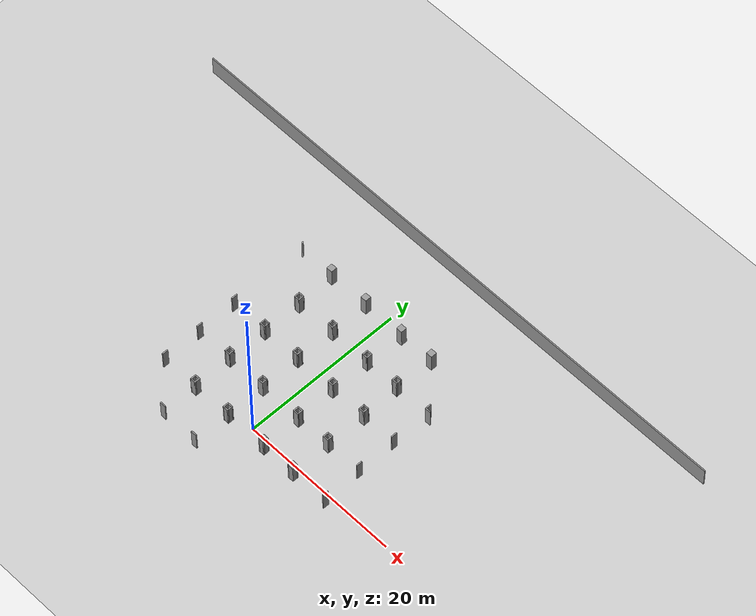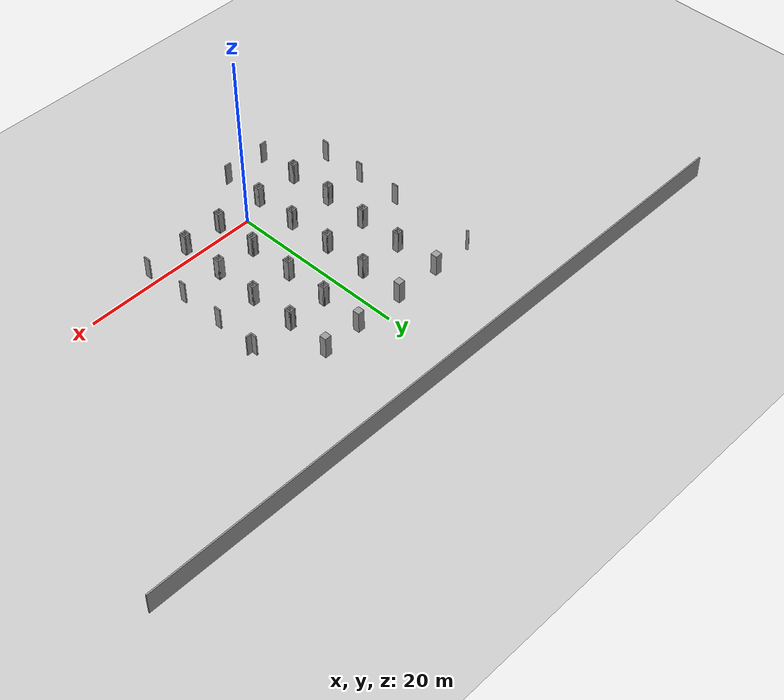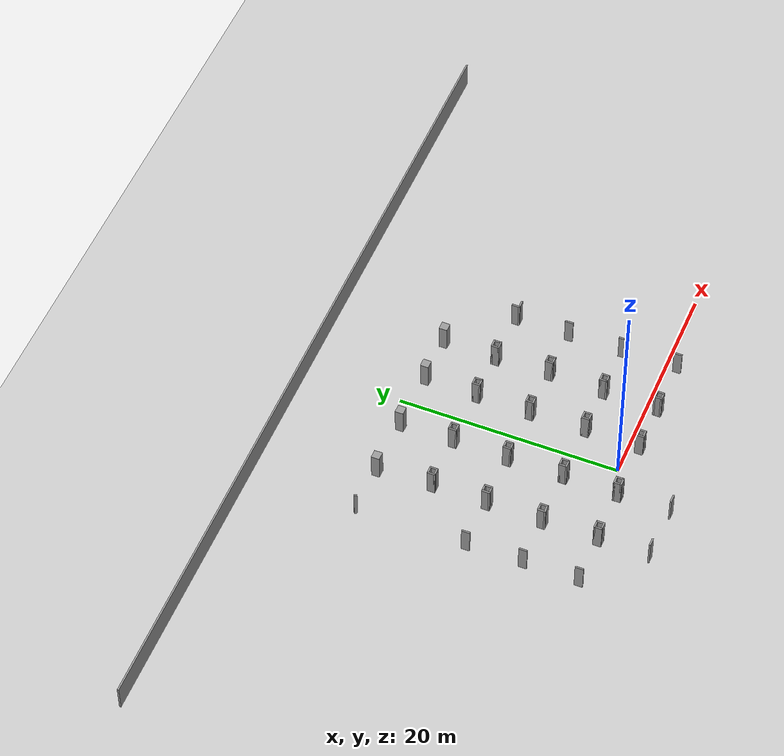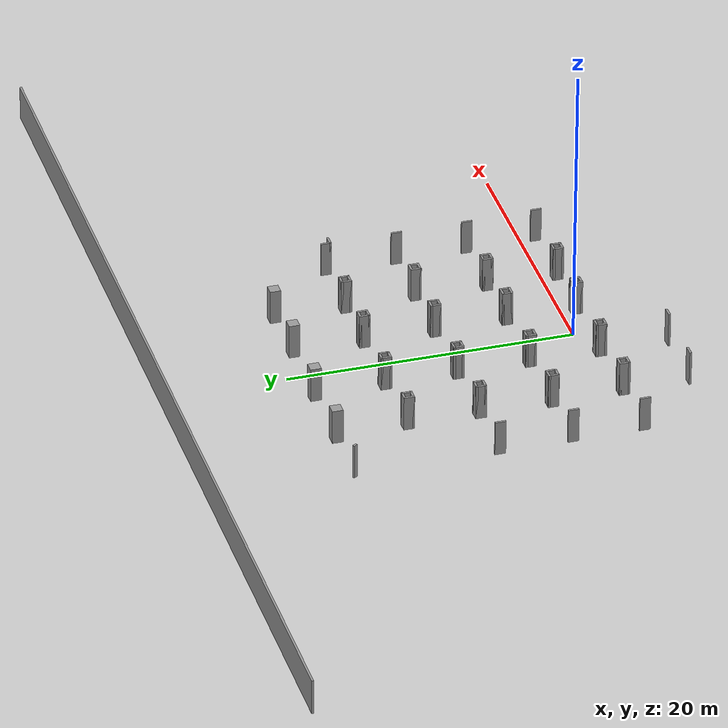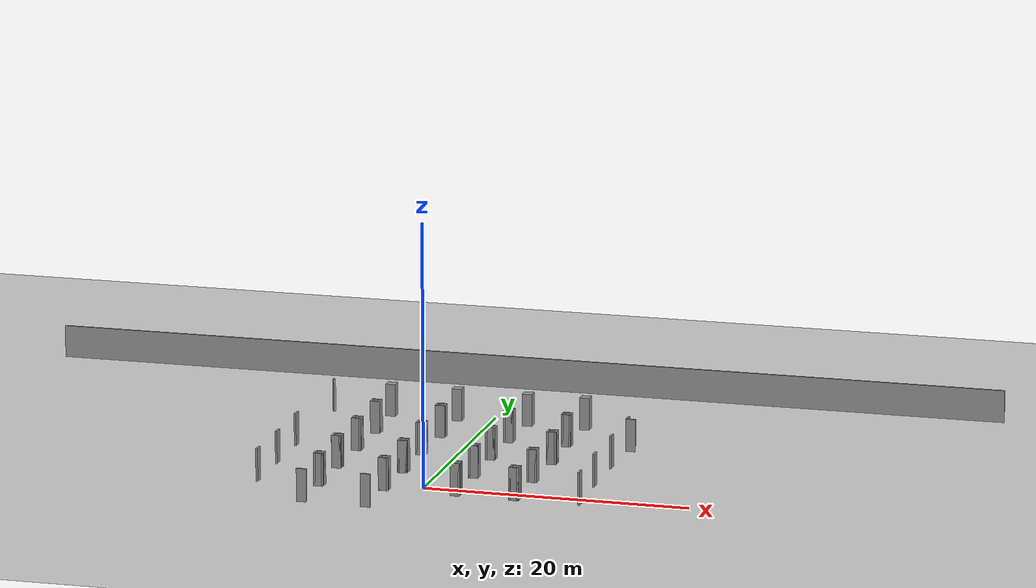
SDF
<sdf version="1.6">
 <world name="default">
  <model name="ground_plane">
   <static>1</static>
   <link name="link">
    <collision name="collision">
     <geometry><plane><normal>0 0 1</normal><size>100 100</size></plane></geometry>
     <surface>
      <contact><collide_bitmask>65535</collide_bitmask></contact>
      <friction><ode><mu>100</mu><mu2>50</mu2></ode></friction>
     </surface>
    </collision>
    <visual name="visual">
     <cast_shadows>0</cast_shadows>
     <geometry><plane><normal>0 0 1</normal><size>100 100</size></plane></geometry>
     <material>
      <script><uri>file://media/materials/scripts/gazebo.material</uri><name>Gazebo/Grey</name></script>
     </material>
    </visual>
   </link>
  </model>
  <model name="parking_area_big">
   <pose>0.030669 -0.012869 0 0 -0 0</pose>
   <link name="Wall_152">
    <collision name="Wall_152_Collision">
     <geometry><box><size>0.75 0.15 2.5</size></box></geometry>
     <pose>0 0 1.25 0 -0 0</pose>
    </collision>
    <visual name="Wall_152_Visual">
     <pose>0 0 1.25 0 -0 0</pose>
     <geometry><box><size>0.75 0.15 2.5</size></box></geometry>
     <material>
      <script><uri>file://media/materials/scripts/gazebo.material</uri><name>Gazebo/Grey</name></script>
      <ambient>1 1 1 1</ambient>
     </material>
     <meta><layer>0</layer></meta>
    </visual>
    <pose>2.71765 -0.688004 0 0 -0 0</pose>
   </link>
   <link name="Wall_153">
    <collision name="Wall_153_Collision">
     <geometry><box><size>0.75 0.15 2.5</size></box></geometry>
     <pose>0 0 1.25 0 -0 0</pose>
    </collision>
    <visual name="Wall_153_Visual">
     <pose>0 0 1.25 0 -0 0</pose>
     <geometry><box><size>0.75 0.15 2.5</size></box></geometry>
     <material>
      <script><uri>file://media/materials/scripts/gazebo.material</uri><name>Gazebo/Grey</name></script>
      <ambient>1 1 1 1</ambient>
     </material>
     <meta><layer>0</layer></meta>
    </visual>
    <pose>3.01764 -0.988004 0 0 -0 -1.5708</pose>
   </link>
   <link name="Wall_154">
    <collision name="Wall_154_Collision">
     <geometry><box><size>0.75 0.15 2.5</size></box></geometry>
     <pose>0 0 1.25 0 -0 0</pose>
    </collision>
    <visual name="Wall_154_Visual">
     <pose>0 0 1.25 0 -0 0</pose>
     <geometry><box><size>0.75 0.15 2.5</size></box></geometry>
     <material>
      <script><uri>file://media/materials/scripts/gazebo.material</uri><name>Gazebo/Grey</name></script>
      <ambient>1 1 1 1</ambient>
     </material>
     <meta><layer>0</layer></meta>
    </visual>
    <pose>2.71765 -1.288 0 0 -0 3.14159</pose>
   </link>
   <link name="Wall_155">
    <collision name="Wall_155_Collision">
     <geometry><box><size>0.75 0.15 2.5</size></box></geometry>
     <pose>0 0 1.25 0 -0 0</pose>
    </collision>
    <visual name="Wall_155_Visual">
     <pose>0 0 1.25 0 -0 0</pose>
     <geometry><box><size>0.75 0.15 2.5</size></box></geometry>
     <material>
      <script><uri>file://media/materials/scripts/gazebo.material</uri><name>Gazebo/Grey</name></script>
      <ambient>1 1 1 1</ambient>
     </material>
     <meta><layer>0</layer></meta>
    </visual>
    <pose>2.41764 -0.988004 0 0 -0 1.5708</pose>
   </link>
   <link name="Wall_163">
    <collision name="Wall_163_Collision">
     <geometry><box><size>0.75 0.15 2.5</size></box></geometry>
     <pose>0 0 1.25 0 -0 0</pose>
    </collision>
    <visual name="Wall_163_Visual">
     <pose>0 0 1.25 0 -0 0</pose>
     <geometry><box><size>0.75 0.15 2.5</size></box></geometry>
     <material>
      <script><uri>file://media/materials/scripts/gazebo.material</uri><name>Gazebo/Grey</name></script>
      <ambient>1 1 1 1</ambient>
     </material>
     <meta><layer>0</layer></meta>
    </visual>
    <pose>7.17964 -0.734004 0 0 -0 0</pose>
   </link>
   <link name="Wall_164">
    <collision name="Wall_164_Collision">
     <geometry><box><size>0.75 0.15 2.5</size></box></geometry>
     <pose>0 0 1.25 0 -0 0</pose>
    </collision>
    <visual name="Wall_164_Visual">
     <pose>0 0 1.25 0 -0 0</pose>
     <geometry><box><size>0.75 0.15 2.5</size></box></geometry>
     <material>
      <script><uri>file://media/materials/scripts/gazebo.material</uri><name>Gazebo/Grey</name></script>
      <ambient>1 1 1 1</ambient>
     </material>
     <meta><layer>0</layer></meta>
    </visual>
    <pose>7.47964 -1.034 0 0 -0 -1.5708</pose>
   </link>
   <link name="Wall_165">
    <collision name="Wall_165_Collision">
     <geometry><box><size>0.75 0.15 2.5</size></box></geometry>
     <pose>0 0 1.25 0 -0 0</pose>
    </collision>
    <visual name="Wall_165_Visual">
     <pose>0 0 1.25 0 -0 0</pose>
     <geometry><box><size>0.75 0.15 2.5</size></box></geometry>
     <material>
      <script><uri>file://media/materials/scripts/gazebo.material</uri><name>Gazebo/Grey</name></script>
      <ambient>1 1 1 1</ambient>
     </material>
     <meta><layer>0</layer></meta>
    </visual>
    <pose>7.17964 -1.334 0 0 -0 3.14159</pose>
   </link>
   <link name="Wall_166">
    <collision name="Wall_166_Collision">
     <geometry><box><size>0.75 0.15 2.5</size></box></geometry>
     <pose>0 0 1.25 0 -0 0</pose>
    </collision>
    <visual name="Wall_166_Visual">
     <pose>0 0 1.25 0 -0 0</pose>
     <geometry><box><size>0.75 0.15 2.5</size></box></geometry>
     <material>
      <script><uri>file://media/materials/scripts/gazebo.material</uri><name>Gazebo/Grey</name></script>
      <ambient>1 1 1 1</ambient>
     </material>
     <meta><layer>0</layer></meta>
    </visual>
    <pose>6.87965 -1.034 0 0 -0 1.5708</pose>
   </link>
   <link name="Wall_171">
    <collision name="Wall_171_Collision">
     <geometry><box><size>0.75 0.15 2.5</size></box></geometry>
     <pose>0 0 1.25 0 -0 0</pose>
    </collision>
    <visual name="Wall_171_Visual">
     <pose>0 0 1.25 0 -0 0</pose>
     <geometry><box><size>0.75 0.15 2.5</size></box></geometry>
     <material>
      <script><uri>file://media/materials/scripts/gazebo.material</uri><name>Gazebo/Grey</name></script>
      <ambient>1 1 1 1</ambient>
     </material>
     <meta><layer>0</layer></meta>
    </visual>
    <pose>12.0546 -1.034 0 0 -0 1.5708</pose>
   </link>
   <link name="Wall_203">
    <collision name="Wall_203_Collision">
     <geometry><box><size>0.75 0.15 2.5</size></box></geometry>
     <pose>0 0 1.25 0 -0 0</pose>
    </collision>
    <visual name="Wall_203_Visual">
     <pose>0 0 1.25 0 -0 0</pose>
     <geometry><box><size>0.75 0.15 2.5</size></box></geometry>
     <material>
      <script><uri>file://media/materials/scripts/gazebo.material</uri><name>Gazebo/Grey</name></script>
      <ambient>1 1 1 1</ambient>
     </material>
     <meta><layer>0</layer></meta>
    </visual>
    <pose>-2.71545 -0.677885 0 0 -0 0</pose>
   </link>
   <link name="Wall_204">
    <collision name="Wall_204_Collision">
     <geometry><box><size>0.75 0.15 2.5</size></box></geometry>
     <pose>0 0 1.25 0 -0 0</pose>
    </collision>
    <visual name="Wall_204_Visual">
     <pose>0 0 1.25 0 -0 0</pose>
     <geometry><box><size>0.75 0.15 2.5</size></box></geometry>
     <material>
      <script><uri>file://media/materials/scripts/gazebo.material</uri><name>Gazebo/Grey</name></script>
      <ambient>1 1 1 1</ambient>
     </material>
     <meta><layer>0</layer></meta>
    </visual>
    <pose>-2.41545 -0.977885 0 0 -0 -1.5708</pose>
   </link>
   <link name="Wall_205">
    <collision name="Wall_205_Collision">
     <geometry><box><size>0.75 0.15 2.5</size></box></geometry>
     <pose>0 0 1.25 0 -0 0</pose>
    </collision>
    <visual name="Wall_205_Visual">
     <pose>0 0 1.25 0 -0 0</pose>
     <geometry><box><size>0.75 0.15 2.5</size></box></geometry>
     <material>
      <script><uri>file://media/materials/scripts/gazebo.material</uri><name>Gazebo/Grey</name></script>
      <ambient>1 1 1 1</ambient>
     </material>
     <meta><layer>0</layer></meta>
    </visual>
    <pose>-2.71545 -1.27788 0 0 -0 3.14159</pose>
   </link>
   <link name="Wall_206">
    <collision name="Wall_206_Collision">
     <geometry><box><size>0.75 0.15 2.5</size></box></geometry>
     <pose>0 0 1.25 0 -0 0</pose>
    </collision>
    <visual name="Wall_206_Visual">
     <pose>0 0 1.25 0 -0 0</pose>
     <geometry><box><size>0.75 0.15 2.5</size></box></geometry>
     <material>
      <script><uri>file://media/materials/scripts/gazebo.material</uri><name>Gazebo/Grey</name></script>
      <ambient>1 1 1 1</ambient>
     </material>
     <meta><layer>0</layer></meta>
    </visual>
    <pose>-3.01545 -0.977885 0 0 -0 1.5708</pose>
   </link>
   <link name="Wall_208">
    <collision name="Wall_208_Collision">
     <geometry><box><size>0.75 0.15 2.5</size></box></geometry>
     <pose>0 0 1.25 0 -0 0</pose>
    </collision>
    <visual name="Wall_208_Visual">
     <pose>0 0 1.25 0 -0 0</pose>
     <geometry><box><size>0.75 0.15 2.5</size></box></geometry>
     <material>
      <script><uri>file://media/materials/scripts/gazebo.material</uri><name>Gazebo/Grey</name></script>
      <ambient>1 1 1 1</ambient>
     </material>
     <meta><layer>0</layer></meta>
    </visual>
    <pose>-2.77188 -5.7202 0 0 -0 0</pose>
   </link>
   <link name="Wall_213">
    <collision name="Wall_213_Collision">
     <geometry><box><size>0.75 0.15 2.5</size></box></geometry>
     <pose>0 0 1.25 0 -0 0</pose>
    </collision>
    <visual name="Wall_213_Visual">
     <pose>0 0 1.25 0 -0 0</pose>
     <geometry><box><size>0.75 0.15 2.5</size></box></geometry>
     <material>
      <script><uri>file://media/materials/scripts/gazebo.material</uri><name>Gazebo/Grey</name></script>
      <ambient>1 1 1 1</ambient>
     </material>
     <meta><layer>0</layer></meta>
    </visual>
    <pose>-2.71898 9.27695 0 0 -0 0</pose>
   </link>
   <link name="Wall_214">
    <collision name="Wall_214_Collision">
     <geometry><box><size>0.75 0.15 2.5</size></box></geometry>
     <pose>0 0 1.25 0 -0 0</pose>
    </collision>
    <visual name="Wall_214_Visual">
     <pose>0 0 1.25 0 -0 0</pose>
     <geometry><box><size>0.75 0.15 2.5</size></box></geometry>
     <material>
      <script><uri>file://media/materials/scripts/gazebo.material</uri><name>Gazebo/Grey</name></script>
      <ambient>1 1 1 1</ambient>
     </material>
     <meta><layer>0</layer></meta>
    </visual>
    <pose>-2.41898 8.97695 0 0 -0 -1.5708</pose>
   </link>
   <link name="Wall_215">
    <collision name="Wall_215_Collision">
     <geometry><box><size>0.75 0.15 2.5</size></box></geometry>
     <pose>0 0 1.25 0 -0 0</pose>
    </collision>
    <visual name="Wall_215_Visual">
     <pose>0 0 1.25 0 -0 0</pose>
     <geometry><box><size>0.75 0.15 2.5</size></box></geometry>
     <material>
      <script><uri>file://media/materials/scripts/gazebo.material</uri><name>Gazebo/Grey</name></script>
      <ambient>1 1 1 1</ambient>
     </material>
     <meta><layer>0</layer></meta>
    </visual>
    <pose>-2.71898 8.67695 0 0 -0 3.14159</pose>
   </link>
   <link name="Wall_216">
    <collision name="Wall_216_Collision">
     <geometry><box><size>0.75 0.15 2.5</size></box></geometry>
     <pose>0 0 1.25 0 -0 0</pose>
    </collision>
    <visual name="Wall_216_Visual">
     <pose>0 0 1.25 0 -0 0</pose>
     <geometry><box><size>0.75 0.15 2.5</size></box></geometry>
     <material>
      <script><uri>file://media/materials/scripts/gazebo.material</uri><name>Gazebo/Grey</name></script>
      <ambient>1 1 1 1</ambient>
     </material>
     <meta><layer>0</layer></meta>
    </visual>
    <pose>-3.01898 8.97695 0 0 -0 1.5708</pose>
   </link>
   <link name="Wall_218">
    <collision name="Wall_218_Collision">
     <geometry><box><size>0.75 0.15 2.5</size></box></geometry>
     <pose>0 0 1.25 0 -0 0</pose>
    </collision>
    <visual name="Wall_218_Visual">
     <pose>0 0 1.25 0 -0 0</pose>
     <geometry><box><size>0.75 0.15 2.5</size></box></geometry>
     <material>
      <script><uri>file://media/materials/scripts/gazebo.material</uri><name>Gazebo/Grey</name></script>
      <ambient>1 1 1 1</ambient>
     </material>
     <meta><layer>0</layer></meta>
    </visual>
    <pose>-2.66608 4.225 0 0 -0 0</pose>
   </link>
   <link name="Wall_219">
    <collision name="Wall_219_Collision">
     <geometry><box><size>0.75 0.15 2.5</size></box></geometry>
     <pose>0 0 1.25 0 -0 0</pose>
    </collision>
    <visual name="Wall_219_Visual">
     <pose>0 0 1.25 0 -0 0</pose>
     <geometry><box><size>0.75 0.15 2.5</size></box></geometry>
     <material>
      <script><uri>file://media/materials/scripts/gazebo.material</uri><name>Gazebo/Grey</name></script>
      <ambient>1 1 1 1</ambient>
     </material>
     <meta><layer>0</layer></meta>
    </visual>
    <pose>-2.36608 3.925 0 0 -0 -1.5708</pose>
   </link>
   <link name="Wall_220">
    <collision name="Wall_220_Collision">
     <geometry><box><size>0.75 0.15 2.5</size></box></geometry>
     <pose>0 0 1.25 0 -0 0</pose>
    </collision>
    <visual name="Wall_220_Visual">
     <pose>0 0 1.25 0 -0 0</pose>
     <geometry><box><size>0.75 0.15 2.5</size></box></geometry>
     <material>
      <script><uri>file://media/materials/scripts/gazebo.material</uri><name>Gazebo/Grey</name></script>
      <ambient>1 1 1 1</ambient>
     </material>
     <meta><layer>0</layer></meta>
    </visual>
    <pose>-2.66608 3.625 0 0 -0 3.14159</pose>
   </link>
   <link name="Wall_221">
    <collision name="Wall_221_Collision">
     <geometry><box><size>0.75 0.15 2.5</size></box></geometry>
     <pose>0 0 1.25 0 -0 0</pose>
    </collision>
    <visual name="Wall_221_Visual">
     <pose>0 0 1.25 0 -0 0</pose>
     <geometry><box><size>0.75 0.15 2.5</size></box></geometry>
     <material>
      <script><uri>file://media/materials/scripts/gazebo.material</uri><name>Gazebo/Grey</name></script>
      <ambient>1 1 1 1</ambient>
     </material>
     <meta><layer>0</layer></meta>
    </visual>
    <pose>-2.96608 3.925 0 0 -0 1.5708</pose>
   </link>
   <link name="Wall_223">
    <collision name="Wall_223_Collision">
     <geometry><box><size>0.75 0.15 2.5</size></box></geometry>
     <pose>0 0 1.25 0 -0 0</pose>
    </collision>
    <visual name="Wall_223_Visual">
     <pose>0 0 1.25 0 -0 0</pose>
     <geometry><box><size>0.75 0.15 2.5</size></box></geometry>
     <material>
      <script><uri>file://media/materials/scripts/gazebo.material</uri><name>Gazebo/Grey</name></script>
      <ambient>1 1 1 1</ambient>
     </material>
     <meta><layer>0</layer></meta>
    </visual>
    <pose>2.62392 9.27695 0 0 -0 0</pose>
   </link>
   <link name="Wall_224">
    <collision name="Wall_224_Collision">
     <geometry><box><size>0.75 0.15 2.5</size></box></geometry>
     <pose>0 0 1.25 0 -0 0</pose>
    </collision>
    <visual name="Wall_224_Visual">
     <pose>0 0 1.25 0 -0 0</pose>
     <geometry><box><size>0.75 0.15 2.5</size></box></geometry>
     <material>
      <script><uri>file://media/materials/scripts/gazebo.material</uri><name>Gazebo/Grey</name></script>
      <ambient>1 1 1 1</ambient>
     </material>
     <meta><layer>0</layer></meta>
    </visual>
    <pose>2.92392 8.97695 0 0 -0 -1.5708</pose>
   </link>
   <link name="Wall_225">
    <collision name="Wall_225_Collision">
     <geometry><box><size>0.75 0.15 2.5</size></box></geometry>
     <pose>0 0 1.25 0 -0 0</pose>
    </collision>
    <visual name="Wall_225_Visual">
     <pose>0 0 1.25 0 -0 0</pose>
     <geometry><box><size>0.75 0.15 2.5</size></box></geometry>
     <material>
      <script><uri>file://media/materials/scripts/gazebo.material</uri><name>Gazebo/Grey</name></script>
      <ambient>1 1 1 1</ambient>
     </material>
     <meta><layer>0</layer></meta>
    </visual>
    <pose>2.62392 8.67695 0 0 -0 3.14159</pose>
   </link>
   <link name="Wall_226">
    <collision name="Wall_226_Collision">
     <geometry><box><size>0.75 0.15 2.5</size></box></geometry>
     <pose>0 0 1.25 0 -0 0</pose>
    </collision>
    <visual name="Wall_226_Visual">
     <pose>0 0 1.25 0 -0 0</pose>
     <geometry><box><size>0.75 0.15 2.5</size></box></geometry>
     <material>
      <script><uri>file://media/materials/scripts/gazebo.material</uri><name>Gazebo/Grey</name></script>
      <ambient>1 1 1 1</ambient>
     </material>
     <meta><layer>0</layer></meta>
    </visual>
    <pose>2.32392 8.97695 0 0 -0 1.5708</pose>
   </link>
   <link name="Wall_228">
    <collision name="Wall_228_Collision">
     <geometry><box><size>0.75 0.15 2.5</size></box></geometry>
     <pose>0 0 1.25 0 -0 0</pose>
    </collision>
    <visual name="Wall_228_Visual">
     <pose>0 0 1.25 0 -0 0</pose>
     <geometry><box><size>0.75 0.15 2.5</size></box></geometry>
     <material>
      <script><uri>file://media/materials/scripts/gazebo.material</uri><name>Gazebo/Grey</name></script>
      <ambient>1 1 1 1</ambient>
     </material>
     <meta><layer>0</layer></meta>
    </visual>
    <pose>2.72972 4.225 0 0 -0 0</pose>
   </link>
   <link name="Wall_229">
    <collision name="Wall_229_Collision">
     <geometry><box><size>0.75 0.15 2.5</size></box></geometry>
     <pose>0 0 1.25 0 -0 0</pose>
    </collision>
    <visual name="Wall_229_Visual">
     <pose>0 0 1.25 0 -0 0</pose>
     <geometry><box><size>0.75 0.15 2.5</size></box></geometry>
     <material>
      <script><uri>file://media/materials/scripts/gazebo.material</uri><name>Gazebo/Grey</name></script>
      <ambient>1 1 1 1</ambient>
     </material>
     <meta><layer>0</layer></meta>
    </visual>
    <pose>3.02972 3.925 0 0 -0 -1.5708</pose>
   </link>
   <link name="Wall_230">
    <collision name="Wall_230_Collision">
     <geometry><box><size>0.75 0.15 2.5</size></box></geometry>
     <pose>0 0 1.25 0 -0 0</pose>
    </collision>
    <visual name="Wall_230_Visual">
     <pose>0 0 1.25 0 -0 0</pose>
     <geometry><box><size>0.75 0.15 2.5</size></box></geometry>
     <material>
      <script><uri>file://media/materials/scripts/gazebo.material</uri><name>Gazebo/Grey</name></script>
      <ambient>1 1 1 1</ambient>
     </material>
     <meta><layer>0</layer></meta>
    </visual>
    <pose>2.72972 3.625 0 0 -0 3.14159</pose>
   </link>
   <link name="Wall_231">
    <collision name="Wall_231_Collision">
     <geometry><box><size>0.75 0.15 2.5</size></box></geometry>
     <pose>0 0 1.25 0 -0 0</pose>
    </collision>
    <visual name="Wall_231_Visual">
     <pose>0 0 1.25 0 -0 0</pose>
     <geometry><box><size>0.75 0.15 2.5</size></box></geometry>
     <material>
      <script><uri>file://media/materials/scripts/gazebo.material</uri><name>Gazebo/Grey</name></script>
      <ambient>1 1 1 1</ambient>
     </material>
     <meta><layer>0</layer></meta>
    </visual>
    <pose>2.42972 3.925 0 0 -0 1.5708</pose>
   </link>
   <link name="Wall_233">
    <collision name="Wall_233_Collision">
     <geometry><box><size>0.75 0.15 2.5</size></box></geometry>
     <pose>0 0 1.25 0 -0 0</pose>
    </collision>
    <visual name="Wall_233_Visual">
     <pose>0 0 1.25 0 -0 0</pose>
     <geometry><box><size>0.75 0.15 2.5</size></box></geometry>
     <material>
      <script><uri>file://media/materials/scripts/gazebo.material</uri><name>Gazebo/Grey</name></script>
      <ambient>1 1 1 1</ambient>
     </material>
     <meta><layer>0</layer></meta>
    </visual>
    <pose>7.33202 9.27695 0 0 -0 0</pose>
   </link>
   <link name="Wall_234">
    <collision name="Wall_234_Collision">
     <geometry><box><size>0.75 0.15 2.5</size></box></geometry>
     <pose>0 0 1.25 0 -0 0</pose>
    </collision>
    <visual name="Wall_234_Visual">
     <pose>0 0 1.25 0 -0 0</pose>
     <geometry><box><size>0.75 0.15 2.5</size></box></geometry>
     <material>
      <script><uri>file://media/materials/scripts/gazebo.material</uri><name>Gazebo/Grey</name></script>
      <ambient>1 1 1 1</ambient>
     </material>
     <meta><layer>0</layer></meta>
    </visual>
    <pose>7.63202 8.97695 0 0 -0 -1.5708</pose>
   </link>
   <link name="Wall_235">
    <collision name="Wall_235_Collision">
     <geometry><box><size>0.75 0.15 2.5</size></box></geometry>
     <pose>0 0 1.25 0 -0 0</pose>
    </collision>
    <visual name="Wall_235_Visual">
     <pose>0 0 1.25 0 -0 0</pose>
     <geometry><box><size>0.75 0.15 2.5</size></box></geometry>
     <material>
      <script><uri>file://media/materials/scripts/gazebo.material</uri><name>Gazebo/Grey</name></script>
      <ambient>1 1 1 1</ambient>
     </material>
     <meta><layer>0</layer></meta>
    </visual>
    <pose>7.33202 8.67695 0 0 -0 3.14159</pose>
   </link>
   <link name="Wall_236">
    <collision name="Wall_236_Collision">
     <geometry><box><size>0.75 0.15 2.5</size></box></geometry>
     <pose>0 0 1.25 0 -0 0</pose>
    </collision>
    <visual name="Wall_236_Visual">
     <pose>0 0 1.25 0 -0 0</pose>
     <geometry><box><size>0.75 0.15 2.5</size></box></geometry>
     <material>
      <script><uri>file://media/materials/scripts/gazebo.material</uri><name>Gazebo/Grey</name></script>
      <ambient>1 1 1 1</ambient>
     </material>
     <meta><layer>0</layer></meta>
    </visual>
    <pose>7.03202 8.97695 0 0 -0 1.5708</pose>
   </link>
   <link name="Wall_238">
    <collision name="Wall_238_Collision">
     <geometry><box><size>0.75 0.15 2.5</size></box></geometry>
     <pose>0 0 1.25 0 -0 0</pose>
    </collision>
    <visual name="Wall_238_Visual">
     <pose>0 0 1.25 0 -0 0</pose>
     <geometry><box><size>0.75 0.15 2.5</size></box></geometry>
     <material>
      <script><uri>file://media/materials/scripts/gazebo.material</uri><name>Gazebo/Grey</name></script>
      <ambient>1 1 1 1</ambient>
     </material>
     <meta><layer>0</layer></meta>
    </visual>
    <pose>7.19977 4.25145 0 0 -0 0</pose>
   </link>
   <link name="Wall_239">
    <collision name="Wall_239_Collision">
     <geometry><box><size>0.75 0.15 2.5</size></box></geometry>
     <pose>0 0 1.25 0 -0 0</pose>
    </collision>
    <visual name="Wall_239_Visual">
     <pose>0 0 1.25 0 -0 0</pose>
     <geometry><box><size>0.75 0.15 2.5</size></box></geometry>
     <material>
      <script><uri>file://media/materials/scripts/gazebo.material</uri><name>Gazebo/Grey</name></script>
      <ambient>1 1 1 1</ambient>
     </material>
     <meta><layer>0</layer></meta>
    </visual>
    <pose>7.49977 3.95145 0 0 -0 -1.5708</pose>
   </link>
   <link name="Wall_240">
    <collision name="Wall_240_Collision">
     <geometry><box><size>0.75 0.15 2.5</size></box></geometry>
     <pose>0 0 1.25 0 -0 0</pose>
    </collision>
    <visual name="Wall_240_Visual">
     <pose>0 0 1.25 0 -0 0</pose>
     <geometry><box><size>0.75 0.15 2.5</size></box></geometry>
     <material>
      <script><uri>file://media/materials/scripts/gazebo.material</uri><name>Gazebo/Grey</name></script>
      <ambient>1 1 1 1</ambient>
     </material>
     <meta><layer>0</layer></meta>
    </visual>
    <pose>7.19977 3.65145 0 0 -0 3.14159</pose>
   </link>
   <link name="Wall_241">
    <collision name="Wall_241_Collision">
     <geometry><box><size>0.75 0.15 2.5</size></box></geometry>
     <pose>0 0 1.25 0 -0 0</pose>
    </collision>
    <visual name="Wall_241_Visual">
     <pose>0 0 1.25 0 -0 0</pose>
     <geometry><box><size>0.75 0.15 2.5</size></box></geometry>
     <material>
      <script><uri>file://media/materials/scripts/gazebo.material</uri><name>Gazebo/Grey</name></script>
      <ambient>1 1 1 1</ambient>
     </material>
     <meta><layer>0</layer></meta>
    </visual>
    <pose>6.89977 3.95145 0 0 -0 1.5708</pose>
   </link>
   <link name="Wall_246">
    <collision name="Wall_246_Collision">
     <geometry><box><size>0.75 0.15 2.5</size></box></geometry>
     <pose>0 0 1.25 0 -0 0</pose>
    </collision>
    <visual name="Wall_246_Visual">
     <pose>0 0 1.25 0 -0 0</pose>
     <geometry><box><size>0.75 0.15 2.5</size></box></geometry>
     <material>
      <script><uri>file://media/materials/scripts/gazebo.material</uri><name>Gazebo/Grey</name></script>
      <ambient>1 1 1 1</ambient>
     </material>
     <meta><layer>0</layer></meta>
    </visual>
    <pose>11.8724 3.95145 0 0 -0 1.5708</pose>
   </link>
   <link name="Wall_251">
    <collision name="Wall_251_Collision">
     <geometry><box><size>0.75 0.15 2.5</size></box></geometry>
     <pose>0 0 1.25 0 -0 0</pose>
    </collision>
    <visual name="Wall_251_Visual">
     <pose>0 0 1.25 0 -0 0</pose>
     <geometry><box><size>0.75 0.15 2.5</size></box></geometry>
     <material>
      <script><uri>file://media/materials/scripts/gazebo.material</uri><name>Gazebo/Grey</name></script>
      <ambient>1 1 1 1</ambient>
     </material>
     <meta><layer>0</layer></meta>
    </visual>
    <pose>11.8459 8.9505 0 0 -0 1.5708</pose>
   </link>
   <link name="Wall_277">
    <collision name="Wall_277_Collision">
     <geometry><box><size>0.75 0.15 2.5</size></box></geometry>
     <pose>0 0 1.25 0 -0 0</pose>
    </collision>
    <visual name="Wall_277_Visual">
     <pose>0 0 1.25 0 -0 0</pose>
     <geometry><box><size>0.75 0.15 2.5</size></box></geometry>
     <material>
      <script><uri>file://media/materials/scripts/gazebo.material</uri><name>Gazebo/Grey</name></script>
      <ambient>1 1 1 1</ambient>
     </material>
     <meta><layer>0</layer></meta>
    </visual>
    <pose>-2.63963 14.276 0 0 -0 0</pose>
   </link>
   <link name="Wall_278">
    <collision name="Wall_278_Collision">
     <geometry><box><size>0.75 0.15 2.5</size></box></geometry>
     <pose>0 0 1.25 0 -0 0</pose>
    </collision>
    <visual name="Wall_278_Visual">
     <pose>0 0 1.25 0 -0 0</pose>
     <geometry><box><size>0.75 0.15 2.5</size></box></geometry>
     <material>
      <script><uri>file://media/materials/scripts/gazebo.material</uri><name>Gazebo/Grey</name></script>
      <ambient>1 1 1 1</ambient>
     </material>
     <meta><layer>0</layer></meta>
    </visual>
    <pose>-2.33963 13.976 0 0 -0 -1.5708</pose>
   </link>
   <link name="Wall_279">
    <collision name="Wall_279_Collision">
     <geometry><box><size>0.75 0.15 2.5</size></box></geometry>
     <pose>0 0 1.25 0 -0 0</pose>
    </collision>
    <visual name="Wall_279_Visual">
     <pose>0 0 1.25 0 -0 0</pose>
     <geometry><box><size>0.75 0.15 2.5</size></box></geometry>
     <material>
      <script><uri>file://media/materials/scripts/gazebo.material</uri><name>Gazebo/Grey</name></script>
      <ambient>1 1 1 1</ambient>
     </material>
     <meta><layer>0</layer></meta>
    </visual>
    <pose>-2.63963 13.676 0 0 -0 3.14159</pose>
   </link>
   <link name="Wall_280">
    <collision name="Wall_280_Collision">
     <geometry><box><size>0.75 0.15 2.5</size></box></geometry>
     <pose>0 0 1.25 0 -0 0</pose>
    </collision>
    <visual name="Wall_280_Visual">
     <pose>0 0 1.25 0 -0 0</pose>
     <geometry><box><size>0.75 0.15 2.5</size></box></geometry>
     <material>
      <script><uri>file://media/materials/scripts/gazebo.material</uri><name>Gazebo/Grey</name></script>
      <ambient>1 1 1 1</ambient>
     </material>
     <meta><layer>0</layer></meta>
    </visual>
    <pose>-2.93963 13.976 0 0 -0 1.5708</pose>
   </link>
   <link name="Wall_282">
    <collision name="Wall_282_Collision">
     <geometry><box><size>0.75 0.15 2.5</size></box></geometry>
     <pose>0 0 1.25 0 -0 0</pose>
    </collision>
    <visual name="Wall_282_Visual">
     <pose>0 0 1.25 0 -0 0</pose>
     <geometry><box><size>0.75 0.15 2.5</size></box></geometry>
     <material>
      <script><uri>file://media/materials/scripts/gazebo.material</uri><name>Gazebo/Grey</name></script>
      <ambient>1 1 1 1</ambient>
     </material>
     <meta><layer>0</layer></meta>
    </visual>
    <pose>2.67682 14.2231 0 0 -0 0</pose>
   </link>
   <link name="Wall_283">
    <collision name="Wall_283_Collision">
     <geometry><box><size>0.75 0.15 2.5</size></box></geometry>
     <pose>0 0 1.25 0 -0 0</pose>
    </collision>
    <visual name="Wall_283_Visual">
     <pose>0 0 1.25 0 -0 0</pose>
     <geometry><box><size>0.75 0.15 2.5</size></box></geometry>
     <material>
      <script><uri>file://media/materials/scripts/gazebo.material</uri><name>Gazebo/Grey</name></script>
      <ambient>1 1 1 1</ambient>
     </material>
     <meta><layer>0</layer></meta>
    </visual>
    <pose>2.97682 13.9231 0 0 -0 -1.5708</pose>
   </link>
   <link name="Wall_284">
    <collision name="Wall_284_Collision">
     <geometry><box><size>0.75 0.15 2.5</size></box></geometry>
     <pose>0 0 1.25 0 -0 0</pose>
    </collision>
    <visual name="Wall_284_Visual">
     <pose>0 0 1.25 0 -0 0</pose>
     <geometry><box><size>0.75 0.15 2.5</size></box></geometry>
     <material>
      <script><uri>file://media/materials/scripts/gazebo.material</uri><name>Gazebo/Grey</name></script>
      <ambient>1 1 1 1</ambient>
     </material>
     <meta><layer>0</layer></meta>
    </visual>
    <pose>2.67682 13.6231 0 0 -0 3.14159</pose>
   </link>
   <link name="Wall_285">
    <collision name="Wall_285_Collision">
     <geometry><box><size>0.75 0.15 2.5</size></box></geometry>
     <pose>0 0 1.25 0 -0 0</pose>
    </collision>
    <visual name="Wall_285_Visual">
     <pose>0 0 1.25 0 -0 0</pose>
     <geometry><box><size>0.75 0.15 2.5</size></box></geometry>
     <material>
      <script><uri>file://media/materials/scripts/gazebo.material</uri><name>Gazebo/Grey</name></script>
      <ambient>1 1 1 1</ambient>
     </material>
     <meta><layer>0</layer></meta>
    </visual>
    <pose>2.37682 13.9231 0 0 -0 1.5708</pose>
   </link>
   <link name="Wall_287">
    <collision name="Wall_287_Collision">
     <geometry><box><size>0.75 0.15 2.5</size></box></geometry>
     <pose>0 0 1.25 0 -0 0</pose>
    </collision>
    <visual name="Wall_287_Visual">
     <pose>0 0 1.25 0 -0 0</pose>
     <geometry><box><size>0.75 0.15 2.5</size></box></geometry>
     <material>
      <script><uri>file://media/materials/scripts/gazebo.material</uri><name>Gazebo/Grey</name></script>
      <ambient>1 1 1 1</ambient>
     </material>
     <meta><layer>0</layer></meta>
    </visual>
    <pose>7.14687 14.2231 0 0 -0 0</pose>
   </link>
   <link name="Wall_288">
    <collision name="Wall_288_Collision">
     <geometry><box><size>0.75 0.15 2.5</size></box></geometry>
     <pose>0 0 1.25 0 -0 0</pose>
    </collision>
    <visual name="Wall_288_Visual">
     <pose>0 0 1.25 0 -0 0</pose>
     <geometry><box><size>0.75 0.15 2.5</size></box></geometry>
     <material>
      <script><uri>file://media/materials/scripts/gazebo.material</uri><name>Gazebo/Grey</name></script>
      <ambient>1 1 1 1</ambient>
     </material>
     <meta><layer>0</layer></meta>
    </visual>
    <pose>7.44687 13.9231 0 0 -0 -1.5708</pose>
   </link>
   <link name="Wall_289">
    <collision name="Wall_289_Collision">
     <geometry><box><size>0.75 0.15 2.5</size></box></geometry>
     <pose>0 0 1.25 0 -0 0</pose>
    </collision>
    <visual name="Wall_289_Visual">
     <pose>0 0 1.25 0 -0 0</pose>
     <geometry><box><size>0.75 0.15 2.5</size></box></geometry>
     <material>
      <script><uri>file://media/materials/scripts/gazebo.material</uri><name>Gazebo/Grey</name></script>
      <ambient>1 1 1 1</ambient>
     </material>
     <meta><layer>0</layer></meta>
    </visual>
    <pose>7.14687 13.6231 0 0 -0 3.14159</pose>
   </link>
   <link name="Wall_290">
    <collision name="Wall_290_Collision">
     <geometry><box><size>0.75 0.15 2.5</size></box></geometry>
     <pose>0 0 1.25 0 -0 0</pose>
    </collision>
    <visual name="Wall_290_Visual">
     <pose>0 0 1.25 0 -0 0</pose>
     <geometry><box><size>0.75 0.15 2.5</size></box></geometry>
     <material>
      <script><uri>file://media/materials/scripts/gazebo.material</uri><name>Gazebo/Grey</name></script>
      <ambient>1 1 1 1</ambient>
     </material>
     <meta><layer>0</layer></meta>
    </visual>
    <pose>6.84687 13.9231 0 0 -0 1.5708</pose>
   </link>
   <link name="Wall_294">
    <collision name="Wall_294_Collision">
     <geometry><box><size>0.75 0.15 2.5</size></box></geometry>
     <pose>0 0 1.25 0 -0 0</pose>
    </collision>
    <visual name="Wall_294_Visual">
     <pose>0 0 1.25 0 -0 0</pose>
     <geometry><box><size>0.75 0.15 2.5</size></box></geometry>
     <material>
      <script><uri>file://media/materials/scripts/gazebo.material</uri><name>Gazebo/Grey</name></script>
      <ambient>1 1 1 1</ambient>
     </material>
     <meta><layer>0</layer></meta>
    </visual>
    <pose>12.1195 13.6231 0 0 -0 3.14159</pose>
   </link>
   <link name="Wall_295">
    <collision name="Wall_295_Collision">
     <geometry><box><size>0.75 0.15 2.5</size></box></geometry>
     <pose>0 0 1.25 0 -0 0</pose>
    </collision>
    <visual name="Wall_295_Visual">
     <pose>0 0 1.25 0 -0 0</pose>
     <geometry><box><size>0.75 0.15 2.5</size></box></geometry>
     <material>
      <script><uri>file://media/materials/scripts/gazebo.material</uri><name>Gazebo/Grey</name></script>
      <ambient>1 1 1 1</ambient>
     </material>
     <meta><layer>0</layer></meta>
    </visual>
    <pose>11.8195 13.9231 0 0 -0 1.5708</pose>
   </link>
   <link name="Wall_333">
    <collision name="Wall_333_Collision">
     <geometry><box><size>0.75 0.15 2.5</size></box></geometry>
     <pose>0 0 1.25 0 -0 0</pose>
    </collision>
    <visual name="Wall_333_Visual">
     <pose>0 0 1.25 0 -0 0</pose>
     <geometry><box><size>0.75 0.15 2.5</size></box></geometry>
     <material>
      <script><uri>file://media/materials/scripts/gazebo.material</uri><name>Gazebo/Grey</name></script>
      <ambient>1 1 1 1</ambient>
     </material>
     <meta><layer>0</layer></meta>
    </visual>
    <pose>-7.66513 14.1702 0 0 -0 0</pose>
   </link>
   <link name="Wall_334">
    <collision name="Wall_334_Collision">
     <geometry><box><size>0.75 0.15 2.5</size></box></geometry>
     <pose>0 0 1.25 0 -0 0</pose>
    </collision>
    <visual name="Wall_334_Visual">
     <pose>0 0 1.25 0 -0 0</pose>
     <geometry><box><size>0.75 0.15 2.5</size></box></geometry>
     <material>
      <script><uri>file://media/materials/scripts/gazebo.material</uri><name>Gazebo/Grey</name></script>
      <ambient>1 1 1 1</ambient>
     </material>
     <meta><layer>0</layer></meta>
    </visual>
    <pose>-7.36513 13.8702 0 0 -0 -1.5708</pose>
   </link>
   <link name="Wall_335">
    <collision name="Wall_335_Collision">
     <geometry><box><size>0.75 0.15 2.5</size></box></geometry>
     <pose>0 0 1.25 0 -0 0</pose>
    </collision>
    <visual name="Wall_335_Visual">
     <pose>0 0 1.25 0 -0 0</pose>
     <geometry><box><size>0.75 0.15 2.5</size></box></geometry>
     <material>
      <script><uri>file://media/materials/scripts/gazebo.material</uri><name>Gazebo/Grey</name></script>
      <ambient>1 1 1 1</ambient>
     </material>
     <meta><layer>0</layer></meta>
    </visual>
    <pose>-7.66513 13.5702 0 0 -0 3.14159</pose>
   </link>
   <link name="Wall_336">
    <collision name="Wall_336_Collision">
     <geometry><box><size>0.75 0.15 2.5</size></box></geometry>
     <pose>0 0 1.25 0 -0 0</pose>
    </collision>
    <visual name="Wall_336_Visual">
     <pose>0 0 1.25 0 -0 0</pose>
     <geometry><box><size>0.75 0.15 2.5</size></box></geometry>
     <material>
      <script><uri>file://media/materials/scripts/gazebo.material</uri><name>Gazebo/Grey</name></script>
      <ambient>1 1 1 1</ambient>
     </material>
     <meta><layer>0</layer></meta>
    </visual>
    <pose>-7.96513 13.8702 0 0 -0 1.5708</pose>
   </link>
   <link name="Wall_338">
    <collision name="Wall_338_Collision">
     <geometry><box><size>0.75 0.15 2.5</size></box></geometry>
     <pose>0 0 1.25 0 -0 0</pose>
    </collision>
    <visual name="Wall_338_Visual">
     <pose>0 0 1.25 0 -0 0</pose>
     <geometry><box><size>0.75 0.15 2.5</size></box></geometry>
     <material>
      <script><uri>file://media/materials/scripts/gazebo.material</uri><name>Gazebo/Grey</name></script>
      <ambient>1 1 1 1</ambient>
     </material>
     <meta><layer>0</layer></meta>
    </visual>
    <pose>-7.69158 9.22405 0 0 -0 0</pose>
   </link>
   <link name="Wall_339">
    <collision name="Wall_339_Collision">
     <geometry><box><size>0.75 0.15 2.5</size></box></geometry>
     <pose>0 0 1.25 0 -0 0</pose>
    </collision>
    <visual name="Wall_339_Visual">
     <pose>0 0 1.25 0 -0 0</pose>
     <geometry><box><size>0.75 0.15 2.5</size></box></geometry>
     <material>
      <script><uri>file://media/materials/scripts/gazebo.material</uri><name>Gazebo/Grey</name></script>
      <ambient>1 1 1 1</ambient>
     </material>
     <meta><layer>0</layer></meta>
    </visual>
    <pose>-7.39158 8.92405 0 0 -0 -1.5708</pose>
   </link>
   <link name="Wall_340">
    <collision name="Wall_340_Collision">
     <geometry><box><size>0.75 0.15 2.5</size></box></geometry>
     <pose>0 0 1.25 0 -0 0</pose>
    </collision>
    <visual name="Wall_340_Visual">
     <pose>0 0 1.25 0 -0 0</pose>
     <geometry><box><size>0.75 0.15 2.5</size></box></geometry>
     <material>
      <script><uri>file://media/materials/scripts/gazebo.material</uri><name>Gazebo/Grey</name></script>
      <ambient>1 1 1 1</ambient>
     </material>
     <meta><layer>0</layer></meta>
    </visual>
    <pose>-7.69158 8.62405 0 0 -0 3.14159</pose>
   </link>
   <link name="Wall_341">
    <collision name="Wall_341_Collision">
     <geometry><box><size>0.75 0.15 2.5</size></box></geometry>
     <pose>0 0 1.25 0 -0 0</pose>
    </collision>
    <visual name="Wall_341_Visual">
     <pose>0 0 1.25 0 -0 0</pose>
     <geometry><box><size>0.75 0.15 2.5</size></box></geometry>
     <material>
      <script><uri>file://media/materials/scripts/gazebo.material</uri><name>Gazebo/Grey</name></script>
      <ambient>1 1 1 1</ambient>
     </material>
     <meta><layer>0</layer></meta>
    </visual>
    <pose>-7.99158 8.92405 0 0 -0 1.5708</pose>
   </link>
   <link name="Wall_344">
    <collision name="Wall_344_Collision">
     <geometry><box><size>0.75 0.15 2.5</size></box></geometry>
     <pose>0 0 1.25 0 -0 0</pose>
    </collision>
    <visual name="Wall_344_Visual">
     <pose>0 0 1.25 0 -0 0</pose>
     <geometry><box><size>0.75 0.15 2.5</size></box></geometry>
     <material>
      <script><uri>file://media/materials/scripts/gazebo.material</uri><name>Gazebo/Grey</name></script>
      <ambient>1 1 1 1</ambient>
     </material>
     <meta><layer>0</layer></meta>
    </visual>
    <pose>-12.4435 8.9505 0 0 -0 -1.5708</pose>
   </link>
   <link name="Wall_382">
    <collision name="Wall_382_Collision">
     <geometry><box><size>0.75 0.15 2.5</size></box></geometry>
     <pose>0 0 1.25 0 -0 0</pose>
    </collision>
    <visual name="Wall_382_Visual">
     <pose>0 0 1.25 0 -0 0</pose>
     <geometry><box><size>0.75 0.15 2.5</size></box></geometry>
     <material>
      <script><uri>file://media/materials/scripts/gazebo.material</uri><name>Gazebo/Grey</name></script>
      <ambient>1 1 1 1</ambient>
     </material>
     <meta><layer>0</layer></meta>
    </visual>
    <pose>-12.3642 3.89855 0 0 -0 -1.5708</pose>
   </link>
   <link name="Wall_386">
    <collision name="Wall_386_Collision">
     <geometry><box><size>0.75 0.15 2.5</size></box></geometry>
     <pose>0 0 1.25 0 -0 0</pose>
    </collision>
    <visual name="Wall_386_Visual">
     <pose>0 0 1.25 0 -0 0</pose>
     <geometry><box><size>0.75 0.15 2.5</size></box></geometry>
     <material>
      <script><uri>file://media/materials/scripts/gazebo.material</uri><name>Gazebo/Grey</name></script>
      <ambient>1 1 1 1</ambient>
     </material>
     <meta><layer>0</layer></meta>
    </visual>
    <pose>-7.74448 4.225 0 0 -0 0</pose>
   </link>
   <link name="Wall_387">
    <collision name="Wall_387_Collision">
     <geometry><box><size>0.75 0.15 2.5</size></box></geometry>
     <pose>0 0 1.25 0 -0 0</pose>
    </collision>
    <visual name="Wall_387_Visual">
     <pose>0 0 1.25 0 -0 0</pose>
     <geometry><box><size>0.75 0.15 2.5</size></box></geometry>
     <material>
      <script><uri>file://media/materials/scripts/gazebo.material</uri><name>Gazebo/Grey</name></script>
      <ambient>1 1 1 1</ambient>
     </material>
     <meta><layer>0</layer></meta>
    </visual>
    <pose>-7.44448 3.925 0 0 -0 -1.5708</pose>
   </link>
   <link name="Wall_388">
    <collision name="Wall_388_Collision">
     <geometry><box><size>0.75 0.15 2.5</size></box></geometry>
     <pose>0 0 1.25 0 -0 0</pose>
    </collision>
    <visual name="Wall_388_Visual">
     <pose>0 0 1.25 0 -0 0</pose>
     <geometry><box><size>0.75 0.15 2.5</size></box></geometry>
     <material>
      <script><uri>file://media/materials/scripts/gazebo.material</uri><name>Gazebo/Grey</name></script>
      <ambient>1 1 1 1</ambient>
     </material>
     <meta><layer>0</layer></meta>
    </visual>
    <pose>-7.74448 3.625 0 0 -0 3.14159</pose>
   </link>
   <link name="Wall_389">
    <collision name="Wall_389_Collision">
     <geometry><box><size>0.75 0.15 2.5</size></box></geometry>
     <pose>0 0 1.25 0 -0 0</pose>
    </collision>
    <visual name="Wall_389_Visual">
     <pose>0 0 1.25 0 -0 0</pose>
     <geometry><box><size>0.75 0.15 2.5</size></box></geometry>
     <material>
      <script><uri>file://media/materials/scripts/gazebo.material</uri><name>Gazebo/Grey</name></script>
      <ambient>1 1 1 1</ambient>
     </material>
     <meta><layer>0</layer></meta>
    </visual>
    <pose>-8.04448 3.925 0 0 -0 1.5708</pose>
   </link>
   <link name="Wall_407">
    <collision name="Wall_407_Collision">
     <geometry><box><size>0.75 0.15 2.5</size></box></geometry>
     <pose>0 0 1.25 0 -0 0</pose>
    </collision>
    <visual name="Wall_407_Visual">
     <pose>0 0 1.25 0 -0 0</pose>
     <geometry><box><size>0.75 0.15 2.5</size></box></geometry>
     <material>
      <script><uri>file://media/materials/scripts/gazebo.material</uri><name>Gazebo/Grey</name></script>
      <ambient>1 1 1 1</ambient>
     </material>
     <meta><layer>0</layer></meta>
    </visual>
    <pose>-12.3377 -1.0476 0 0 -0 -1.5708</pose>
   </link>
   <link name="Wall_411">
    <collision name="Wall_411_Collision">
     <geometry><box><size>0.75 0.15 2.5</size></box></geometry>
     <pose>0 0 1.25 0 -0 0</pose>
    </collision>
    <visual name="Wall_411_Visual">
     <pose>0 0 1.25 0 -0 0</pose>
     <geometry><box><size>0.75 0.15 2.5</size></box></geometry>
     <material>
      <script><uri>file://media/materials/scripts/gazebo.material</uri><name>Gazebo/Grey</name></script>
      <ambient>1 1 1 1</ambient>
     </material>
     <meta><layer>0</layer></meta>
    </visual>
    <pose>-7.63868 -0.747603 0 0 -0 0</pose>
   </link>
   <link name="Wall_412">
    <collision name="Wall_412_Collision">
     <geometry><box><size>0.75 0.15 2.5</size></box></geometry>
     <pose>0 0 1.25 0 -0 0</pose>
    </collision>
    <visual name="Wall_412_Visual">
     <pose>0 0 1.25 0 -0 0</pose>
     <geometry><box><size>0.75 0.15 2.5</size></box></geometry>
     <material>
      <script><uri>file://media/materials/scripts/gazebo.material</uri><name>Gazebo/Grey</name></script>
      <ambient>1 1 1 1</ambient>
     </material>
     <meta><layer>0</layer></meta>
    </visual>
    <pose>-7.33868 -1.0476 0 0 -0 -1.5708</pose>
   </link>
   <link name="Wall_413">
    <collision name="Wall_413_Collision">
     <geometry><box><size>0.75 0.15 2.5</size></box></geometry>
     <pose>0 0 1.25 0 -0 0</pose>
    </collision>
    <visual name="Wall_413_Visual">
     <pose>0 0 1.25 0 -0 0</pose>
     <geometry><box><size>0.75 0.15 2.5</size></box></geometry>
     <material>
      <script><uri>file://media/materials/scripts/gazebo.material</uri><name>Gazebo/Grey</name></script>
      <ambient>1 1 1 1</ambient>
     </material>
     <meta><layer>0</layer></meta>
    </visual>
    <pose>-7.63868 -1.3476 0 0 -0 3.14159</pose>
   </link>
   <link name="Wall_414">
    <collision name="Wall_414_Collision">
     <geometry><box><size>0.75 0.15 2.5</size></box></geometry>
     <pose>0 0 1.25 0 -0 0</pose>
    </collision>
    <visual name="Wall_414_Visual">
     <pose>0 0 1.25 0 -0 0</pose>
     <geometry><box><size>0.75 0.15 2.5</size></box></geometry>
     <material>
      <script><uri>file://media/materials/scripts/gazebo.material</uri><name>Gazebo/Grey</name></script>
      <ambient>1 1 1 1</ambient>
     </material>
     <meta><layer>0</layer></meta>
    </visual>
    <pose>-7.93868 -1.0476 0 0 -0 1.5708</pose>
   </link>
   <link name="Wall_439">
    <collision name="Wall_439_Collision">
     <geometry><box><size>0.75 0.15 2.5</size></box></geometry>
     <pose>0 0 1.25 0 -0 0</pose>
    </collision>
    <visual name="Wall_439_Visual">
     <pose>0 0 1.25 0 -0 0</pose>
     <geometry><box><size>0.75 0.15 2.5</size></box></geometry>
     <material>
      <script><uri>file://media/materials/scripts/gazebo.material</uri><name>Gazebo/Grey</name></script>
      <ambient>1 1 1 1</ambient>
     </material>
     <meta><layer>0</layer></meta>
    </visual>
    <pose>-7.63868 -5.6144 0 0 -0 0</pose>
   </link>
   <link name="Wall_53">
    <collision name="Wall_53_Collision">
     <geometry><box><size>0.3 0.15 2.5</size></box></geometry>
     <pose>0 0 1.25 0 -0 0</pose>
    </collision>
    <visual name="Wall_53_Visual">
     <pose>0 0 1.25 0 -0 0</pose>
     <geometry><box><size>0.3 0.15 2.5</size></box></geometry>
     <material>
      <script><uri>file://media/materials/scripts/gazebo.material</uri><name>Gazebo/Grey</name></script>
      <ambient>1 1 1 1</ambient>
     </material>
     <meta><layer>0</layer></meta>
    </visual>
    <pose>-12.4558 18.8744 0 0 -0 2.09267</pose>
   </link>
   <link name="Wall_56">
    <collision name="Wall_56_Collision">
     <geometry><box><size>0.76 0.75 2.5</size></box></geometry>
     <pose>0 0 1.25 0 -0 0</pose>
    </collision>
    <visual name="Wall_56_Visual">
     <pose>0 0 1.25 0 -0 0</pose>
     <geometry><box><size>0.76 0.75 2.5</size></box></geometry>
     <material>
      <script><uri>file://media/materials/scripts/gazebo.material</uri><name>Gazebo/Grey</name></script>
      <ambient>1 1 1 1</ambient>
     </material>
     <meta><layer>0</layer></meta>
    </visual>
    <pose>-7.90096 18.8443 0 0 -0 0</pose>
   </link>
   <link name="Wall_572">
    <collision name="Wall_572_Collision">
     <geometry><box><size>74.75 0.15 2.5</size></box></geometry>
     <pose>0 0 1.25 0 -0 0</pose>
    </collision>
    <visual name="Wall_572_Visual">
     <pose>0 0 1.25 0 -0 0</pose>
     <geometry><box><size>74.75 0.15 2.5</size></box></geometry>
     <material>
      <script><uri>file://media/materials/scripts/gazebo.material</uri><name>Gazebo/Grey</name></script>
      <ambient>1 1 1 1</ambient>
     </material>
     <meta><layer>0</layer></meta>
    </visual>
    <pose>0.03142 28.8111 0 0 -0 3.14159</pose>
   </link>
   <link name="Wall_58">
    <collision name="Wall_58_Collision">
     <geometry><box><size>0.76 0.75 2.5</size></box></geometry>
     <pose>0 0 1.25 0 -0 0</pose>
    </collision>
    <visual name="Wall_58_Visual">
     <pose>0 0 1.25 0 -0 0</pose>
     <geometry><box><size>0.76 0.75 2.5</size></box></geometry>
     <material>
      <script><uri>file://media/materials/scripts/gazebo.material</uri><name>Gazebo/Grey</name></script>
      <ambient>1 1 1 1</ambient>
     </material>
     <meta><layer>0</layer></meta>
    </visual>
    <pose>-2.66402 18.8444 0 0 -0 3.14159</pose>
   </link>
   <link name="Wall_60">
    <collision name="Wall_60_Collision">
     <geometry><box><size>0.76 0.75 2.5</size></box></geometry>
     <pose>0 0 1.25 0 -0 0</pose>
    </collision>
    <visual name="Wall_60_Visual">
     <pose>0 0 1.25 0 -0 0</pose>
     <geometry><box><size>0.76 0.75 2.5</size></box></geometry>
     <material>
      <script><uri>file://media/materials/scripts/gazebo.material</uri><name>Gazebo/Grey</name></script>
      <ambient>1 1 1 1</ambient>
     </material>
     <meta><layer>0</layer></meta>
    </visual>
    <pose>2.82804 18.7744 0 0 -0 3.14159</pose>
   </link>
   <link name="Wall_62">
    <collision name="Wall_62_Collision">
     <geometry><box><size>0.76 0.75 2.5</size></box></geometry>
     <pose>0 0 1.25 0 -0 0</pose>
    </collision>
    <visual name="Wall_62_Visual">
     <pose>0 0 1.25 0 -0 0</pose>
     <geometry><box><size>0.76 0.75 2.5</size></box></geometry>
     <material>
      <script><uri>file://media/materials/scripts/gazebo.material</uri><name>Gazebo/Grey</name></script>
      <ambient>1 1 1 1</ambient>
     </material>
     <meta><layer>0</layer></meta>
    </visual>
    <pose>7.28042 18.8443 0 0 -0 0</pose>
   </link>
   <static>1</static>
  </model>
 </world>
</sdf>
